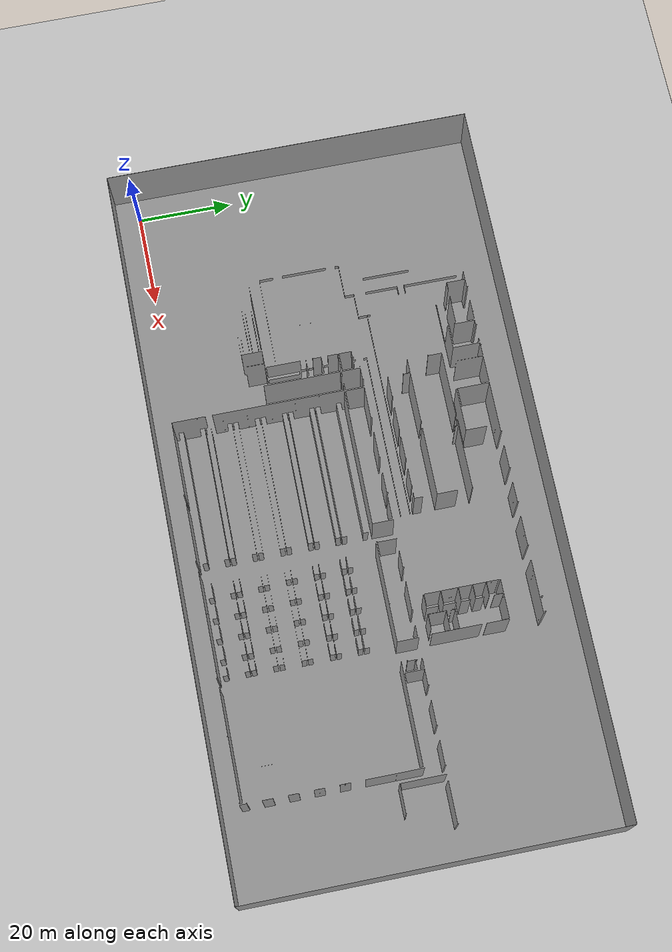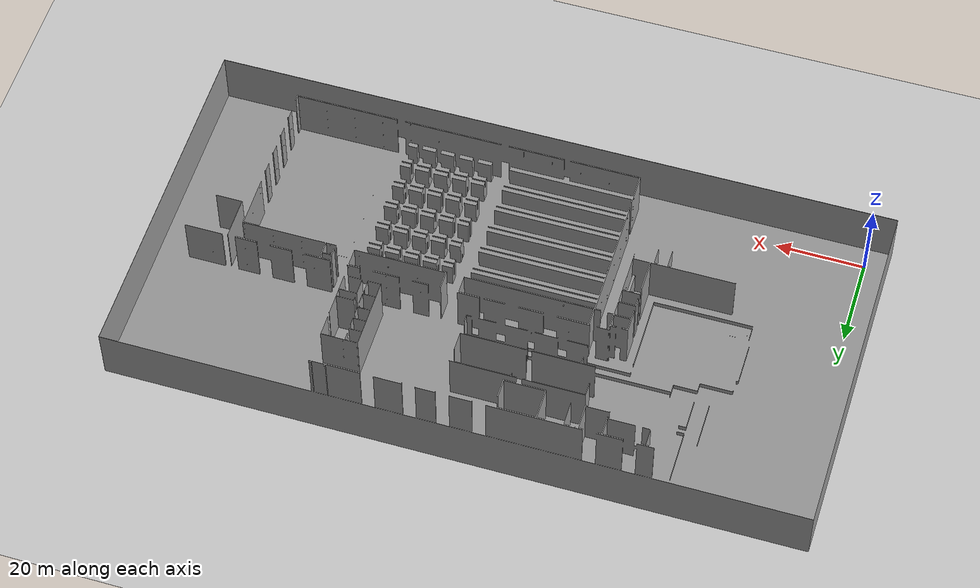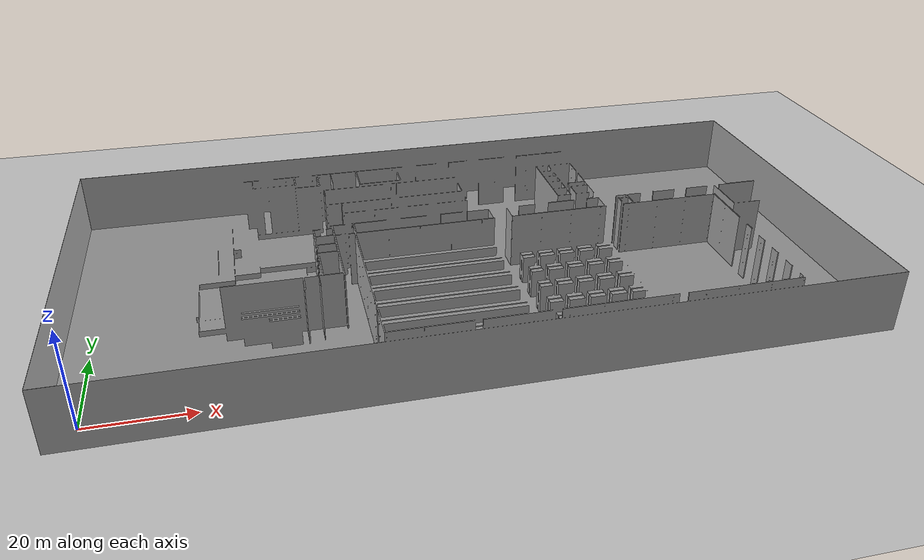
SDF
<?xml version="1.0" ?>
<sdf version="1.7">

  <world name="fg_warehouse_world">

    <!-- PHYSICS                                               -->

    <physics name="1ms" type="ignored">
      <max_step_size>0.01</max_step_size>
      <real_time_factor>1.0</real_time_factor>
    </physics>

    <!-- GAZEBO SYSTEM PLUGINS                                 -->

    <plugin
      filename="gz-sim-physics-system"
      name="gz::sim::systems::Physics"/>

    <plugin
      filename="gz-sim-user-commands-system"
      name="gz::sim::systems::UserCommands"/>

    <plugin
      filename="gz-sim-scene-broadcaster-system"
      name="gz::sim::systems::SceneBroadcaster"/>

    <plugin
      filename="gz-sim-sensors-system"
      name="gz::sim::systems::Sensors">
      <render_engine>ogre2</render_engine>
    </plugin>

    <plugin
      filename="gz-sim-contact-system"
      name="gz::sim::systems::Contact"/>

    <plugin
      filename="gz-sim-imu-system"
      name="gz::sim::systems::Imu"/>

    <!-- LIGHT                                                 -->

    <light
      type="directional"
      name="sun">

      <cast_shadows>true</cast_shadows>

      <pose>0 0 10 0 0 0</pose>

      <diffuse>0.8 0.8 0.8 1</diffuse>
      <specular>0.2 0.2 0.2 1</specular>

      <attenuation>
        <range>1000</range>
        <constant>0.9</constant>
        <linear>0.01</linear>
        <quadratic>0.001</quadratic>
      </attenuation>

      <direction>-0.5 0.1 -0.9</direction>

    </light>

    <!-- GROUND PLANE                                          -->

    <model name="ground_plane">

      <static>true</static>

      <link name="link">

        <collision name="collision">

          <geometry>

            <plane>
              <normal>0 0 1</normal>
              <size>300 300</size>
            </plane>

          </geometry>

        </collision>

        <visual name="visual">

          <geometry>

            <plane>
              <normal>0 0 1</normal>
              <size>300 300</size>
            </plane>

          </geometry>

          <material>

            <ambient>0.8 0.8 0.8 1</ambient>
            <diffuse>0.8 0.8 0.8 1</diffuse>
            <specular>0.8 0.8 0.8 1</specular>

          </material>

        </visual>

      </link>

    </model>

    <!-- FG WAREHOUSE STL                                      -->

    <model name="fg_warehouse">

      <!-- Warehouse is static -->
      <static>true</static>

      <!-- Warehouse position and orientation -->
      <!-- Center the warehouse by offsetting its original coordinates -->
      <pose>0 0 -0.05 0 0 0</pose>

      <link name="warehouse_link">

        <!-- WAREHOUSE COLLISION                                -->

        <collision name="warehouse_collision">

          <geometry>

            <mesh>

              <uri>
                file:///home/jkw/bopt_ws/src/bopt_description/meshes/FG_warehouse_updated.stl
              </uri>

            </mesh>

          </geometry>

        </collision>

        <!-- WAREHOUSE VISUAL                                   -->

        <visual name="warehouse_visual">

          <geometry>

            <mesh>

              <uri>
                file:///home/jkw/bopt_ws/src/bopt_description/meshes/FG_warehouse_updated.stl
              </uri>

            </mesh>

          </geometry>

          <material>

            <ambient>0.6 0.6 0.6 1</ambient>
            <diffuse>0.6 0.6 0.6 1</diffuse>
            <specular>0.1 0.1 0.1 1</specular>

          </material>

        </visual>

      </link>

    </model>

  </world>

</sdf>
